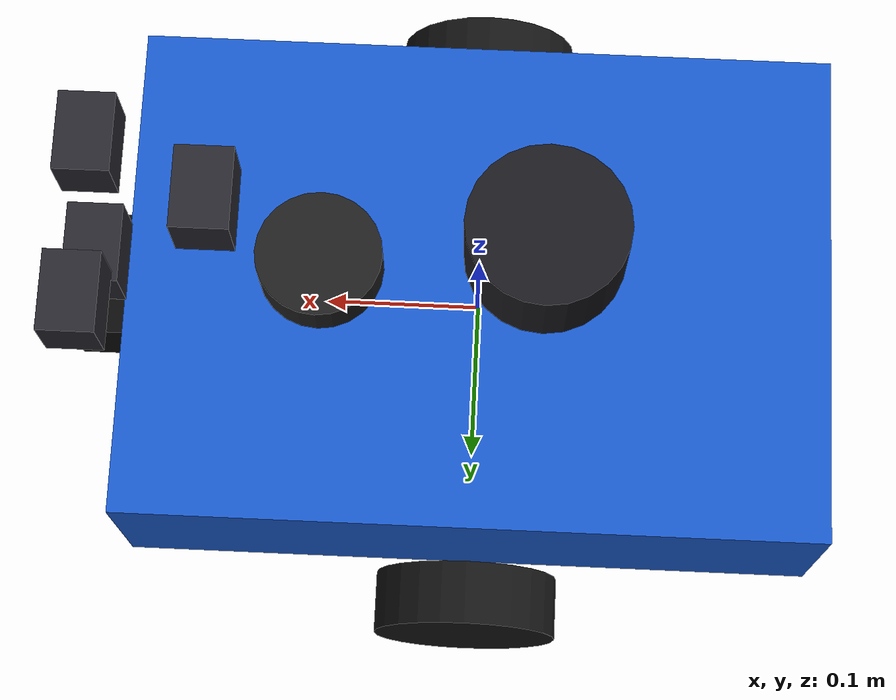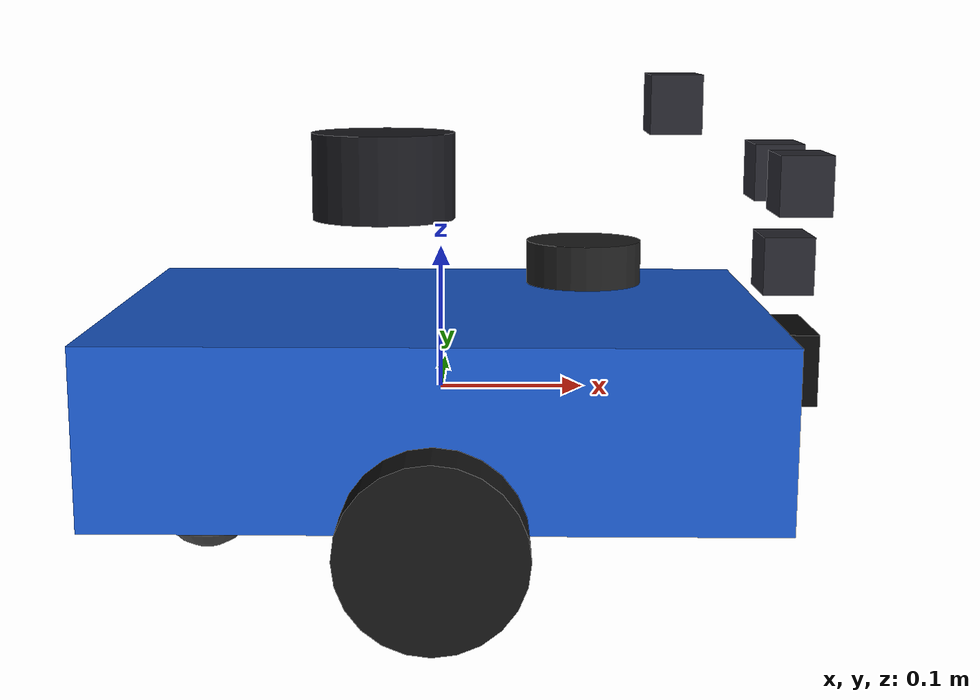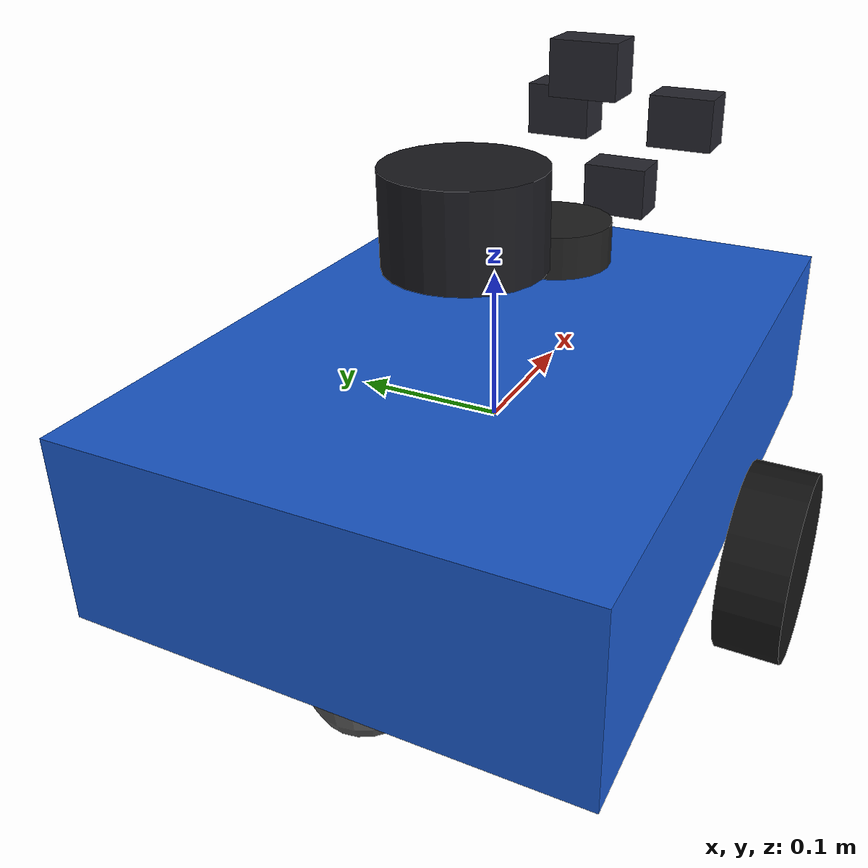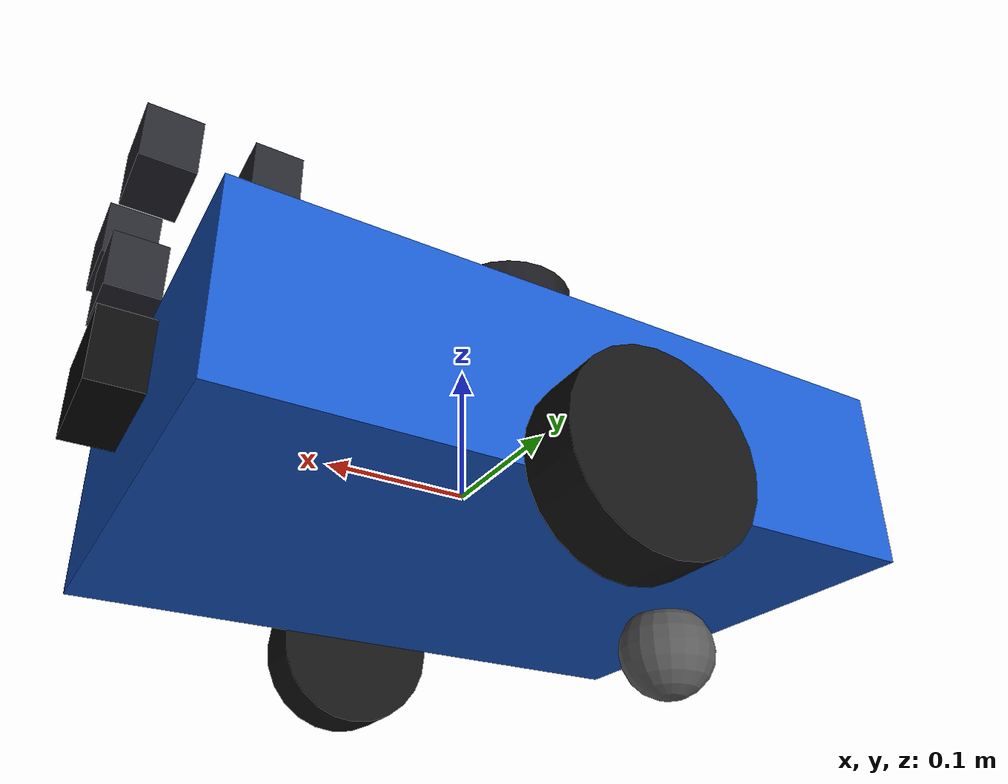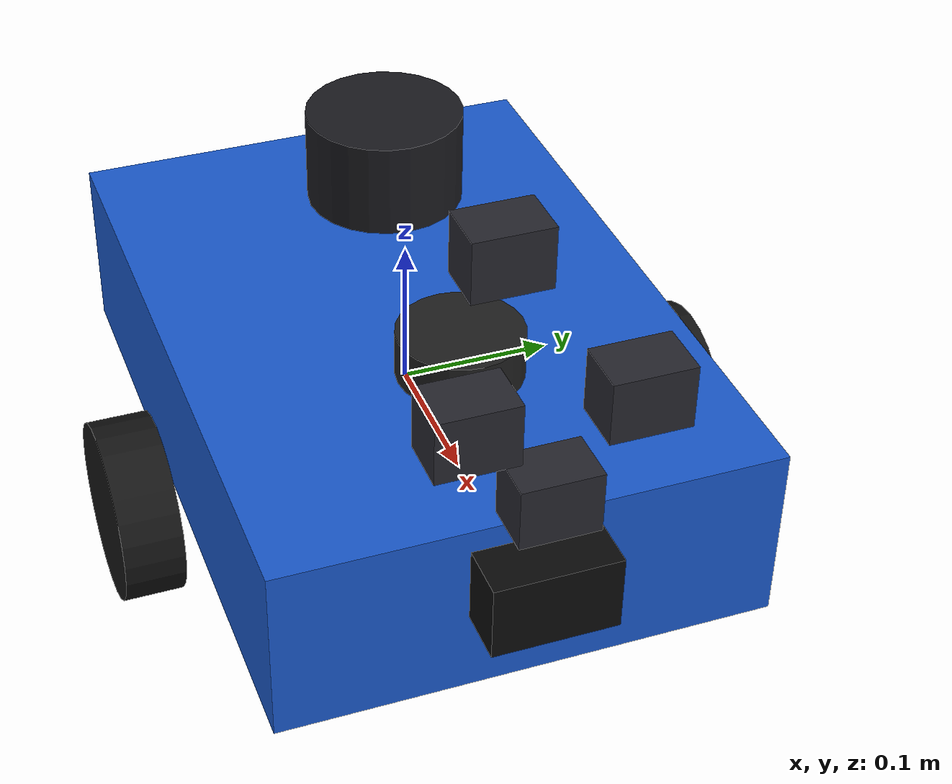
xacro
<?xml version="1.0"?>
<robot xmlns:xacro="http://www.ros.org/wiki/xacro" name="tutorial_bot_sensor_gallery">
  <xacro:include filename="../macros/stage_components.xacro"/>
  <xacro:include filename="../sensors/sensor_mounts.xacro"/>
  <xacro:include filename="../sensors/lidar.xacro"/>
  <xacro:include filename="../sensors/cameras.xacro"/>
  <xacro:include filename="../sensors/imu.xacro"/>

  <xacro:stage_base/>
  <xacro:stage_wheels/>
  <xacro:stage_diff_drive model_name="tutorial_bot_sensor_gallery"/>
  <xacro:tutorial_sensor_mounts/>
  <xacro:sensor_gallery_mounts/>

  <xacro:gpu_lidar_2d reference="lidar_link" sensor_name="lidar"
                       topic="/tutorial_bot/lidar" frame_id="lidar_link"/>
  <xacro:gpu_lidar_3d reference="lidar_3d_link" sensor_name="lidar_3d"
                       topic="/tutorial_bot/lidar_3d" frame_id="lidar_3d_link"/>
  <xacro:imu_sensor reference="imu_link" sensor_name="imu"
                    topic="/tutorial_bot/imu" frame_id="imu_link"/>
  <xacro:mono_camera_sensor reference="mono_camera_link" sensor_name="mono_camera"
                            topic="/tutorial_bot/mono" frame_id="mono_camera_optical_frame"/>
  <xacro:stereo_camera_pair left_reference="stereo_left_link"
                            right_reference="stereo_right_link"
                            topic_prefix="/tutorial_bot/stereo"
                            left_frame_id="stereo_left_optical_frame"
                            right_frame_id="stereo_right_optical_frame"/>
  <xacro:rgbd_camera_sensor reference="camera_link" sensor_name="camera"
                             topic="/tutorial_bot/camera" frame_id="camera_optical_frame"/>
  <xacro:fisheye_camera_sensor reference="fisheye_camera_link" sensor_name="fisheye_camera"
                                topic="/tutorial_bot/fisheye" frame_id="fisheye_camera_optical_frame"/>

</robot>

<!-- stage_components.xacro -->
<robot xmlns:xacro="http://www.ros.org/wiki/xacro">
  <xacro:macro name="stage_box_inertia" params="mass x y z">
    <inertial>
      <mass value="${mass}"/>
      <inertia ixx="${mass * (y * y + z * z) / 12.0}"
               ixy="0.0"
               ixz="0.0"
               iyy="${mass * (x * x + z * z) / 12.0}"
               iyz="0.0"
               izz="${mass * (x * x + y * y) / 12.0}"/>
    </inertial>
  </xacro:macro>

  <xacro:macro name="stage_wheel_inertia" params="mass radius width">
    <inertial>
      <mass value="${mass}"/>
      <inertia ixx="${mass * (3.0 * radius * radius + width * width) / 12.0}"
               ixy="0.0"
               ixz="0.0"
               iyy="${mass * radius * radius / 2.0}"
               iyz="0.0"
               izz="${mass * (3.0 * radius * radius + width * width) / 12.0}"/>
    </inertial>
  </xacro:macro>

  <xacro:macro name="stage_base">
    <link name="base_link">
      <xacro:stage_box_inertia mass="5.0" x="0.45" y="0.32" z="0.12"/>
      <visual>
        <geometry><box size="0.45 0.32 0.12"/></geometry>
        <material name="tutorial_blue"><color rgba="0.10 0.35 0.80 1.0"/></material>
      </visual>
      <collision><geometry><box size="0.45 0.32 0.12"/></geometry></collision>
    </link>
  </xacro:macro>

  <xacro:macro name="stage_wheel" params="side y_position">
    <link name="${side}_wheel_link">
      <xacro:stage_wheel_inertia mass="0.3" radius="0.06" width="0.04"/>
      <visual>
        <origin rpy="1.57079632679 0 0"/>
        <geometry><cylinder radius="0.06" length="0.04"/></geometry>
        <material name="wheel_black"><color rgba="0.08 0.08 0.08 1.0"/></material>
      </visual>
      <collision>
        <origin rpy="1.57079632679 0 0"/>
        <geometry><cylinder radius="0.06" length="0.04"/></geometry>
      </collision>
    </link>
    <joint name="${side}_wheel_joint" type="continuous">
      <parent link="base_link"/>
      <child link="${side}_wheel_link"/>
      <origin xyz="0 ${y_position} -0.06" rpy="0 0 0"/>
      <axis xyz="0 1 0"/>
      <limit effort="5.0" velocity="20.0"/>
    </joint>
  </xacro:macro>

  <xacro:macro name="stage_wheels">
    <xacro:stage_wheel side="left" y_position="0.19"/>
    <xacro:stage_wheel side="right" y_position="-0.19"/>
    <link name="caster_link">
      <inertial>
        <mass value="0.08"/>
        <inertia ixx="0.0000392" ixy="0" ixz="0"
                 iyy="0.0000392" iyz="0" izz="0.0000392"/>
      </inertial>
      <visual>
        <geometry><sphere radius="0.035"/></geometry>
        <material name="caster_gray"><color rgba="0.35 0.35 0.35 1.0"/></material>
      </visual>
      <collision><geometry><sphere radius="0.035"/></geometry></collision>
    </link>
    <joint name="caster_joint" type="fixed">
      <parent link="base_link"/>
      <child link="caster_link"/>
      <origin xyz="-0.17 0 -0.085" rpy="0 0 0"/>
    </joint>
    <gazebo reference="caster_link"><mu1>0.05</mu1><mu2>0.05</mu2></gazebo>
  </xacro:macro>

  <xacro:macro name="stage_diff_drive" params="model_name:=tutorial_bot">
    <gazebo>
      <plugin filename="gz-sim-diff-drive-system" name="gz::sim::systems::DiffDrive">
        <left_joint>left_wheel_joint</left_joint>
        <right_joint>right_wheel_joint</right_joint>
        <wheel_separation>0.38</wheel_separation>
        <wheel_radius>0.06</wheel_radius>
        <odom_publish_frequency>30</odom_publish_frequency>
        <frame_id>odom</frame_id>
        <child_frame_id>base_link</child_frame_id>
      </plugin>
      <plugin filename="gz-sim-joint-state-publisher-system"
              name="gz::sim::systems::JointStatePublisher">
        <topic>/model/${model_name}/joint_state</topic>
        <update_rate>30</update_rate>
        <joint_name>left_wheel_joint</joint_name>
        <joint_name>right_wheel_joint</joint_name>
      </plugin>
    </gazebo>
  </xacro:macro>
</robot>

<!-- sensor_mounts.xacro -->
<robot xmlns:xacro="http://www.ros.org/wiki/xacro">
  <!--
    센서의 물리적인 link / joint만 정의한다. 센서 모델은 lidar.xacro,
    cameras.xacro, imu.xacro에 분리해 같은 mount를 여러 센서 구성에서 재사용한다.
  -->
  <xacro:macro name="sensor_box_inertia" params="mass x y z">
    <inertial>
      <mass value="${mass}"/>
      <inertia ixx="${mass * (y * y + z * z) / 12.0}"
               ixy="0.0"
               ixz="0.0"
               iyy="${mass * (x * x + z * z) / 12.0}"
               iyz="0.0"
               izz="${mass * (x * x + y * y) / 12.0}"/>
    </inertial>
  </xacro:macro>

  <xacro:macro name="tutorial_sensor_mounts">
    <link name="lidar_link">
      <xacro:sensor_box_inertia mass="0.05" x="0.08" y="0.08" z="0.03"/>
      <visual>
        <geometry><cylinder radius="0.04" length="0.03"/></geometry>
        <material name="sensor_dark"><color rgba="0.12 0.12 0.12 1.0"/></material>
      </visual>
    </link>
    <joint name="lidar_joint" type="fixed">
      <parent link="base_link"/>
      <child link="lidar_link"/>
      <origin xyz="0.10 0 0.09" rpy="0 0 0"/>
    </joint>

    <link name="camera_link">
      <xacro:sensor_box_inertia mass="0.05" x="0.04" y="0.08" z="0.05"/>
      <visual>
        <geometry><box size="0.04 0.08 0.05"/></geometry>
        <material name="camera_black"><color rgba="0.04 0.04 0.04 1.0"/></material>
      </visual>
    </link>
    <joint name="camera_joint" type="fixed">
      <parent link="base_link"/>
      <child link="camera_link"/>
      <origin xyz="0.24 0 0.02" rpy="0 0 0"/>
    </joint>

    <!-- REP 103 optical frame: +z forward, +x right, +y down. -->
    <link name="camera_optical_frame"/>
    <joint name="camera_optical_joint" type="fixed">
      <parent link="camera_link"/>
      <child link="camera_optical_frame"/>
      <origin xyz="0 0 0" rpy="-1.57079632679 0 -1.57079632679"/>
    </joint>

    <link name="imu_link">
      <xacro:sensor_box_inertia mass="0.02" x="0.03" y="0.03" z="0.02"/>
    </link>
    <joint name="imu_joint" type="fixed">
      <parent link="base_link"/>
      <child link="imu_link"/>
      <origin xyz="0 0 0" rpy="0 0 0"/>
    </joint>
  </xacro:macro>

  <xacro:macro name="fixed_camera_mount" params="name xyz">
    <link name="${name}_link">
      <xacro:sensor_box_inertia mass="0.03" x="0.035" y="0.05" z="0.04"/>
      <visual>
        <geometry><box size="0.035 0.05 0.04"/></geometry>
        <material name="gallery_camera"><color rgba="0.15 0.15 0.18 1.0"/></material>
      </visual>
    </link>
    <joint name="${name}_joint" type="fixed">
      <parent link="base_link"/>
      <child link="${name}_link"/>
      <origin xyz="${xyz}" rpy="0 0 0"/>
    </joint>
    <link name="${name}_optical_frame"/>
    <joint name="${name}_optical_joint" type="fixed">
      <parent link="${name}_link"/>
      <child link="${name}_optical_frame"/>
      <origin xyz="0 0 0" rpy="-1.57079632679 0 -1.57079632679"/>
    </joint>
  </xacro:macro>

  <xacro:macro name="sensor_gallery_mounts">
    <xacro:fixed_camera_mount name="mono_camera" xyz="0.24 0 0.09"/>
    <xacro:fixed_camera_mount name="stereo_left" xyz="0.24 0.05 0.15"/>
    <xacro:fixed_camera_mount name="stereo_right" xyz="0.24 -0.05 0.15"/>
    <xacro:fixed_camera_mount name="fisheye_camera" xyz="0.16 0 0.20"/>

    <link name="lidar_3d_link">
      <xacro:sensor_box_inertia mass="0.08" x="0.10" y="0.10" z="0.06"/>
      <visual>
        <geometry><cylinder radius="0.05" length="0.06"/></geometry>
        <material name="gallery_lidar"><color rgba="0.1 0.1 0.12 1.0"/></material>
      </visual>
    </link>
    <joint name="lidar_3d_joint" type="fixed">
      <parent link="base_link"/>
      <child link="lidar_3d_link"/>
      <origin xyz="-0.04 0 0.15" rpy="0 0 0"/>
    </joint>
  </xacro:macro>
</robot>
